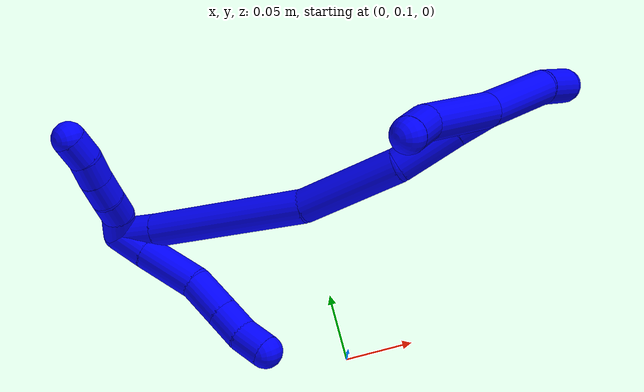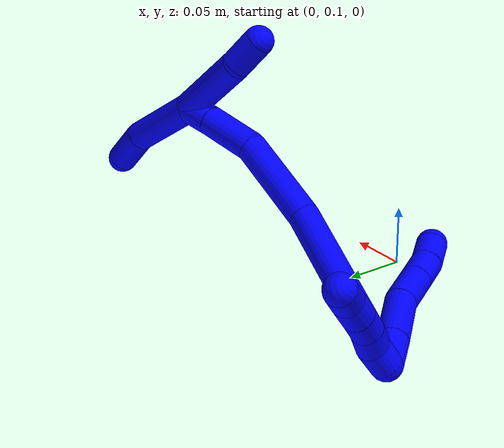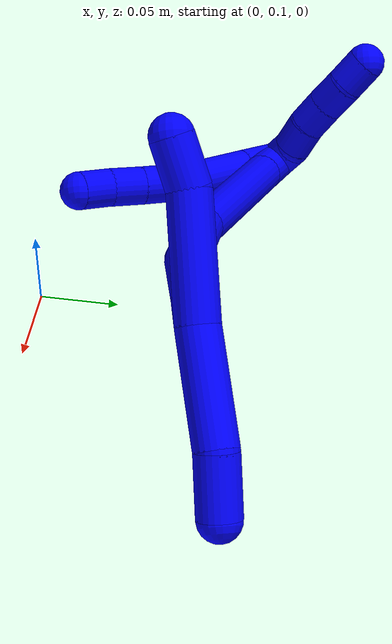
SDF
<sdf version="1.7">
 <world name="default">
  <plugin name="TubeGeneratorPlugin" filename="libtube_generator_plugin.so"/>
  <model name="photoneo_s_sensor">
   <static>1</static>
   <pose>0 0 2 1.57079 1.57079 3.14159</pose>
   <link name="link">
    <inertial><mass>0.1</mass></inertial>
    <sensor name="sensor" type="depth">
     <update_rate>30</update_rate>
     <camera>
      <horizontal_fov>1.22</horizontal_fov>
      <image><width>1920</width><height>1200</height><format>B8G8R8</format></image>
      <clip><near>0.1</near><far>4</far></clip>
      <depth_camera><output>points</output></depth_camera>
     </camera>
     <plugin name="camera_plugin" filename="libgazebo_ros_depth_camera.so">
      <baseline>0.2</baseline>
      <alwaysOn>1</alwaysOn>
      <updateRate>0.0</updateRate>
      <cameraName>camera_ir</cameraName>
      <imageTopicName>/camera/color/image_raw</imageTopicName>
      <cameraInfoTopicName>/camera/color/camera_info</cameraInfoTopicName>
      <depthImageTopicName>/camera/depth/image_raw</depthImageTopicName>
      <depthImageCameraInfoTopicName>/camera/depth/camera_info</depthImageCameraInfoTopicName>
      <pointCloudTopicName>/camera/depth/points</pointCloudTopicName>
      <frameName>fr_optical</frameName>
      <pointCloudCutoff>0.1</pointCloudCutoff>
      <pointCloudCutoffMax>2.0</pointCloudCutoffMax>
      <distortionK1>0</distortionK1>
      <distortionK2>0</distortionK2>
      <distortionK3>0</distortionK3>
      <distortionT1>0</distortionT1>
      <distortionT2>0</distortionT2>
      <CxPrime>0</CxPrime>
      <Cx>0</Cx>
      <Cy>0</Cy>
      <focalLength>0</focalLength>
      <hackBaseline>0</hackBaseline>
     </plugin>
    </sensor>
   </link>
  </model>
  <gravity>0 0 -9.8</gravity>
  <magnetic_field>6e-06 2.3e-05 -4.2e-05</magnetic_field>
  <atmosphere type="adiabatic"/>
  <physics name="default_physics" default="0" type="ode">
   <max_step_size>0.003</max_step_size>
   <real_time_factor>1</real_time_factor>
   <real_time_update_rate>1000</real_time_update_rate>
   <max_contacts>10000</max_contacts>
   <ode>
    <solver>
     <type>quick</type>
     <iters>100</iters>
     <sor>1.3</sor>
     <use_dynamic_moi_rescaling>0</use_dynamic_moi_rescaling>
    </solver>
    <constraints>
     <contact_max_correcting_vel>0</contact_max_correcting_vel>
     <contact_surface_layer>0.001</contact_surface_layer>
     <cfm>0</cfm>
     <erp>0.2</erp>
    </constraints>
   </ode>
  </physics>
  <scene><ambient>0.4 0.4 0.4 1</ambient><background>0.7 0.7 0.7 1</background><shadows>0</shadows></scene>
  <audio><device>default</device></audio>
  <spherical_coordinates>
   <surface_model>EARTH_WGS84</surface_model>
   <latitude_deg>0</latitude_deg>
   <longitude_deg>0</longitude_deg>
   <elevation>0</elevation>
   <heading_deg>0</heading_deg>
  </spherical_coordinates>
  <model name="bin">
   <static>1</static>
   <link name="bottom">
    <collision name="collision-bottom">
     <pose>0 0 -0.01 0 -0 0</pose>
     <geometry><box><size>0.8 0.6 0.02</size></box></geometry>
     <surface>
      <friction><ode><mu>100</mu><mu2>100</mu2></ode></friction>
      <contact><collide_bitmask>65535</collide_bitmask></contact>
     </surface>
    </collision>
   </link>
   <link name="west_wall">
    <collision name="collision-west_wall">
     <pose>-0.41 0 0.1 0 -0 0</pose>
     <geometry><box><size>0.02 0.6 0.2</size></box></geometry>
     <surface>
      <friction><ode><mu>100</mu><mu2>100</mu2></ode></friction>
      <contact><collide_bitmask>65535</collide_bitmask></contact>
     </surface>
    </collision>
   </link>
   <link name="east_wall">
    <collision name="collision-east_wall">
     <pose>0.41 0 0.1 0 -0 0</pose>
     <geometry><box><size>0.02 0.6 0.2</size></box></geometry>
     <surface>
      <friction><ode><mu>100</mu><mu2>100</mu2></ode></friction>
      <contact><collide_bitmask>65535</collide_bitmask></contact>
     </surface>
    </collision>
   </link>
   <link name="south_wall">
    <collision name="collision-south_wall">
     <pose>0 -0.31 0.1 0 -0 0</pose>
     <geometry><box><size>0.8 0.02 0.2</size></box></geometry>
     <surface>
      <friction><ode><mu>100</mu><mu2>100</mu2></ode></friction>
      <contact><collide_bitmask>65535</collide_bitmask></contact>
     </surface>
    </collision>
   </link>
   <link name="north_wall">
    <collision name="collision-north_wall">
     <pose>0 0.31 0.1 0 -0 0</pose>
     <geometry><box><size>0.8 0.02 0.2</size></box></geometry>
     <surface>
      <friction><ode><mu>100</mu><mu2>100</mu2></ode></friction>
      <contact><collide_bitmask>65535</collide_bitmask></contact>
     </surface>
    </collision>
   </link>
  </model>
  <model name="1">
   <static>0</static>
   <link name="1">
    <collision name="collision-cylinder-e_1_2_8">
     <pose>0.008444 0.010275 0.003249 -1.26458 0.664647 -0.495314</pose>
     <geometry><cylinder><radius>0.0125</radius><length>0.027381</length></cylinder></geometry>
     <surface>
      <friction><ode><mu>1.16</mu><mu2>1.16</mu2><slip1>0</slip1><slip2>0</slip2></ode></friction>
      <contact><ode><kp>1e+06</kp><kd>1</kd><max_vel>0</max_vel><min_depth>0.001</min_depth></ode></contact>
     </surface>
    </collision>
    <visual name="visual-cylinder-e_1_2_8">
     <pose>0.008444 0.010275 0.003249 -1.26458 0.664647 -0.495314</pose>
     <geometry><cylinder><radius>0.0125</radius><length>0.027381</length></cylinder></geometry>
     <material><ambient>0 0 1 1</ambient></material>
    </visual>
    <collision name="collision-cylinder-e_2_8_9">
     <pose>0.031564 0.037283 0.012181 -1.24332 0.693035 -0.506281</pose>
     <geometry><cylinder><radius>0.0125</radius><length>0.045943</length></cylinder></geometry>
     <surface>
      <friction><ode><mu>1.16</mu><mu2>1.16</mu2><slip1>0</slip1><slip2>0</slip2></ode></friction>
      <contact><ode><kp>1e+06</kp><kd>1</kd><max_vel>0</max_vel><min_depth>0.001</min_depth></ode></contact>
     </surface>
    </collision>
    <visual name="visual-cylinder-e_2_8_9">
     <pose>0.031564 0.037283 0.012181 -1.24332 0.693035 -0.506281</pose>
     <geometry><cylinder><radius>0.0125</radius><length>0.045943</length></cylinder></geometry>
     <material><ambient>0 0 1 1</ambient></material>
    </visual>
    <collision name="collision-cylinder-e_3_9_10">
     <pose>0.054308 0.067601 0.019056 -1.48336 0.534229 -0.491304</pose>
     <geometry><cylinder><radius>0.0125</radius><length>0.031688</length></cylinder></geometry>
     <surface>
      <friction><ode><mu>1.16</mu><mu2>1.16</mu2><slip1>0</slip1><slip2>0</slip2></ode></friction>
      <contact><ode><kp>1e+06</kp><kd>1</kd><max_vel>0</max_vel><min_depth>0.001</min_depth></ode></contact>
     </surface>
    </collision>
    <visual name="visual-cylinder-e_3_9_10">
     <pose>0.054308 0.067601 0.019056 -1.48336 0.534229 -0.491304</pose>
     <geometry><cylinder><radius>0.0125</radius><length>0.031688</length></cylinder></geometry>
     <material><ambient>0 0 1 1</ambient></material>
    </visual>
    <collision name="collision-cylinder-e_4_10_11">
     <pose>0.068325 0.090864 0.0209 -1.50344 0.55016 -0.515918</pose>
     <geometry><cylinder><radius>0.0125</radius><length>0.02276</length></cylinder></geometry>
     <surface>
      <friction><ode><mu>1.16</mu><mu2>1.16</mu2><slip1>0</slip1><slip2>0</slip2></ode></friction>
      <contact><ode><kp>1e+06</kp><kd>1</kd><max_vel>0</max_vel><min_depth>0.001</min_depth></ode></contact>
     </surface>
    </collision>
    <visual name="visual-cylinder-e_4_10_11">
     <pose>0.068325 0.090864 0.0209 -1.50344 0.55016 -0.515918</pose>
     <geometry><cylinder><radius>0.0125</radius><length>0.02276</length></cylinder></geometry>
     <material><ambient>0 0 1 1</ambient></material>
    </visual>
    <collision name="collision-cylinder-e_5_11_6">
     <pose>0.0817 0.108653 0.023163 -1.37485 0.731677 -0.609447</pose>
     <geometry><cylinder><radius>0.0125</radius><length>0.022228</length></cylinder></geometry>
     <surface>
      <friction><ode><mu>1.16</mu><mu2>1.16</mu2><slip1>0</slip1><slip2>0</slip2></ode></friction>
      <contact><ode><kp>1e+06</kp><kd>1</kd><max_vel>0</max_vel><min_depth>0.001</min_depth></ode></contact>
     </surface>
    </collision>
    <visual name="visual-cylinder-e_5_11_6">
     <pose>0.0817 0.108653 0.023163 -1.37485 0.731677 -0.609447</pose>
     <geometry><cylinder><radius>0.0125</radius><length>0.022228</length></cylinder></geometry>
     <material><ambient>0 0 1 1</ambient></material>
    </visual>
    <collision name="collision-cylinder-e_1_2_12">
     <pose>0.006926 -0.006879 -0.00217 1.87643 0.765115 1.00399</pose>
     <geometry><cylinder><radius>0.0125</radius><length>0.02</length></cylinder></geometry>
     <surface>
      <friction><ode><mu>1.16</mu><mu2>1.16</mu2><slip1>0</slip1><slip2>0</slip2></ode></friction>
      <contact><ode><kp>1e+06</kp><kd>1</kd><max_vel>0</max_vel><min_depth>0.001</min_depth></ode></contact>
     </surface>
    </collision>
    <visual name="visual-cylinder-e_1_2_12">
     <pose>0.006926 -0.006879 -0.00217 1.87643 0.765115 1.00399</pose>
     <geometry><cylinder><radius>0.0125</radius><length>0.02</length></cylinder></geometry>
     <material><ambient>0 0 1 1</ambient></material>
    </visual>
    <collision name="collision-cylinder-e_2_12_13">
     <pose>0.019415 -0.020189 -0.009603 2.25652 0.589844 1.14011</pose>
     <geometry><cylinder><radius>0.0125</radius><length>0.02</length></cylinder></geometry>
     <surface>
      <friction><ode><mu>1.16</mu><mu2>1.16</mu2><slip1>0</slip1><slip2>0</slip2></ode></friction>
      <contact><ode><kp>1e+06</kp><kd>1</kd><max_vel>0</max_vel><min_depth>0.001</min_depth></ode></contact>
     </surface>
    </collision>
    <visual name="visual-cylinder-e_2_12_13">
     <pose>0.019415 -0.020189 -0.009603 2.25652 0.589844 1.14011</pose>
     <geometry><cylinder><radius>0.0125</radius><length>0.02</length></cylinder></geometry>
     <material><ambient>0 0 1 1</ambient></material>
    </visual>
    <collision name="collision-cylinder-e_3_13_14">
     <pose>0.02953 -0.034172 -0.019582 2.12913 0.47273 0.819693</pose>
     <geometry><cylinder><radius>0.0125</radius><length>0.02</length></cylinder></geometry>
     <surface>
      <friction><ode><mu>1.16</mu><mu2>1.16</mu2><slip1>0</slip1><slip2>0</slip2></ode></friction>
      <contact><ode><kp>1e+06</kp><kd>1</kd><max_vel>0</max_vel><min_depth>0.001</min_depth></ode></contact>
     </surface>
    </collision>
    <visual name="visual-cylinder-e_3_13_14">
     <pose>0.02953 -0.034172 -0.019582 2.12913 0.47273 0.819693</pose>
     <geometry><cylinder><radius>0.0125</radius><length>0.02</length></cylinder></geometry>
     <material><ambient>0 0 1 1</ambient></material>
    </visual>
    <collision name="collision-cylinder-e_4_14_15">
     <pose>0.038985 -0.049349 -0.028522 2.07658 0.512277 0.836409</pose>
     <geometry><cylinder><radius>0.0125</radius><length>0.02</length></cylinder></geometry>
     <surface>
      <friction><ode><mu>1.16</mu><mu2>1.16</mu2><slip1>0</slip1><slip2>0</slip2></ode></friction>
      <contact><ode><kp>1e+06</kp><kd>1</kd><max_vel>0</max_vel><min_depth>0.001</min_depth></ode></contact>
     </surface>
    </collision>
    <visual name="visual-cylinder-e_4_14_15">
     <pose>0.038985 -0.049349 -0.028522 2.07658 0.512277 0.836409</pose>
     <geometry><cylinder><radius>0.0125</radius><length>0.02</length></cylinder></geometry>
     <material><ambient>0 0 1 1</ambient></material>
    </visual>
    <collision name="collision-cylinder-e_5_15_5">
     <pose>0.047148 -0.064773 -0.038086 2.17124 0.332181 0.615717</pose>
     <geometry><cylinder><radius>0.0125</radius><length>0.02</length></cylinder></geometry>
     <surface>
      <friction><ode><mu>1.16</mu><mu2>1.16</mu2><slip1>0</slip1><slip2>0</slip2></ode></friction>
      <contact><ode><kp>1e+06</kp><kd>1</kd><max_vel>0</max_vel><min_depth>0.001</min_depth></ode></contact>
     </surface>
    </collision>
    <visual name="visual-cylinder-e_5_15_5">
     <pose>0.047148 -0.064773 -0.038086 2.17124 0.332181 0.615717</pose>
     <geometry><cylinder><radius>0.0125</radius><length>0.02</length></cylinder></geometry>
     <material><ambient>0 0 1 1</ambient></material>
    </visual>
    <collision name="collision-cylinder-e_1_2_16">
     <pose>0.013072 0.003398 0.007114 -0.445622 1.02811 -0.254507</pose>
     <geometry><cylinder><radius>0.0125</radius><length>0.030531</length></cylinder></geometry>
     <surface>
      <friction><ode><mu>1.16</mu><mu2>1.16</mu2><slip1>0</slip1><slip2>0</slip2></ode></friction>
      <contact><ode><kp>1e+06</kp><kd>1</kd><max_vel>0</max_vel><min_depth>0.001</min_depth></ode></contact>
     </surface>
    </collision>
    <visual name="visual-cylinder-e_1_2_16">
     <pose>0.013072 0.003398 0.007114 -0.445622 1.02811 -0.254507</pose>
     <geometry><cylinder><radius>0.0125</radius><length>0.030531</length></cylinder></geometry>
     <material><ambient>0 0 1 1</ambient></material>
    </visual>
    <collision name="collision-cylinder-e_2_16_17">
     <pose>0.079271 0.01794 0.041693 -0.385465 1.0619 -0.228192</pose>
     <geometry><cylinder><radius>0.0125</radius><length>0.121673</length></cylinder></geometry>
     <surface>
      <friction><ode><mu>1.16</mu><mu2>1.16</mu2><slip1>0</slip1><slip2>0</slip2></ode></friction>
      <contact><ode><kp>1e+06</kp><kd>1</kd><max_vel>0</max_vel><min_depth>0.001</min_depth></ode></contact>
     </surface>
    </collision>
    <visual name="visual-cylinder-e_2_16_17">
     <pose>0.079271 0.01794 0.041693 -0.385465 1.0619 -0.228192</pose>
     <geometry><cylinder><radius>0.0125</radius><length>0.121673</length></cylinder></geometry>
     <material><ambient>0 0 1 1</ambient></material>
    </visual>
    <collision name="collision-cylinder-e_3_17_18">
     <pose>0.167231 0.027375 0.086068 0.100753 1.11684 0.062978</pose>
     <geometry><cylinder><radius>0.0125</radius><length>0.077515</length></cylinder></geometry>
     <surface>
      <friction><ode><mu>1.16</mu><mu2>1.16</mu2><slip1>0</slip1><slip2>0</slip2></ode></friction>
      <contact><ode><kp>1e+06</kp><kd>1</kd><max_vel>0</max_vel><min_depth>0.001</min_depth></ode></contact>
     </surface>
    </collision>
    <visual name="visual-cylinder-e_3_17_18">
     <pose>0.167231 0.027375 0.086068 0.100753 1.11684 0.062978</pose>
     <geometry><cylinder><radius>0.0125</radius><length>0.077515</length></cylinder></geometry>
     <material><ambient>0 0 1 1</ambient></material>
    </visual>
    <collision name="collision-cylinder-e_4_18_19">
     <pose>0.218875 0.020946 0.117349 0.317348 0.83813 0.142321</pose>
     <geometry><cylinder><radius>0.0125</radius><length>0.045231</length></cylinder></geometry>
     <surface>
      <friction><ode><mu>1.16</mu><mu2>1.16</mu2><slip1>0</slip1><slip2>0</slip2></ode></friction>
      <contact><ode><kp>1e+06</kp><kd>1</kd><max_vel>0</max_vel><min_depth>0.001</min_depth></ode></contact>
     </surface>
    </collision>
    <visual name="visual-cylinder-e_4_18_19">
     <pose>0.218875 0.020946 0.117349 0.317348 0.83813 0.142321</pose>
     <geometry><cylinder><radius>0.0125</radius><length>0.045231</length></cylinder></geometry>
     <material><ambient>0 0 1 1</ambient></material>
    </visual>
    <collision name="collision-cylinder-e_5_19_1">
     <pose>0.244561 0.014006 0.140277 0.253762 0.787332 0.10587</pose>
     <geometry><cylinder><radius>0.0125</radius><length>0.025052</length></cylinder></geometry>
     <surface>
      <friction><ode><mu>1.16</mu><mu2>1.16</mu2><slip1>0</slip1><slip2>0</slip2></ode></friction>
      <contact><ode><kp>1e+06</kp><kd>1</kd><max_vel>0</max_vel><min_depth>0.001</min_depth></ode></contact>
     </surface>
    </collision>
    <visual name="visual-cylinder-e_5_19_1">
     <pose>0.244561 0.014006 0.140277 0.253762 0.787332 0.10587</pose>
     <geometry><cylinder><radius>0.0125</radius><length>0.025052</length></cylinder></geometry>
     <material><ambient>0 0 1 1</ambient></material>
    </visual>
    <collision name="collision-cylinder-e_1_1_20">
     <pose>0.252819 0.010036 0.181285 0.053898 -0.018964 -0.000511</pose>
     <geometry><cylinder><radius>0.0125</radius><length>0.065009</length></cylinder></geometry>
     <surface>
      <friction><ode><mu>1.16</mu><mu2>1.16</mu2><slip1>0</slip1><slip2>0</slip2></ode></friction>
      <contact><ode><kp>1e+06</kp><kd>1</kd><max_vel>0</max_vel><min_depth>0.001</min_depth></ode></contact>
     </surface>
    </collision>
    <visual name="visual-cylinder-e_1_1_20">
     <pose>0.252819 0.010036 0.181285 0.053898 -0.018964 -0.000511</pose>
     <geometry><cylinder><radius>0.0125</radius><length>0.065009</length></cylinder></geometry>
     <material><ambient>0 0 1 1</ambient></material>
    </visual>
    <collision name="collision-cylinder-e_2_20_4">
     <pose>0.248325 0.009964 0.230714 -0.098558 -0.223456 0.011067</pose>
     <geometry><cylinder><radius>0.0125</radius><length>0.034991</length></cylinder></geometry>
     <surface>
      <friction><ode><mu>1.16</mu><mu2>1.16</mu2><slip1>0</slip1><slip2>0</slip2></ode></friction>
      <contact><ode><kp>1e+06</kp><kd>1</kd><max_vel>0</max_vel><min_depth>0.001</min_depth></ode></contact>
     </surface>
    </collision>
    <visual name="visual-cylinder-e_2_20_4">
     <pose>0.248325 0.009964 0.230714 -0.098558 -0.223456 0.011067</pose>
     <geometry><cylinder><radius>0.0125</radius><length>0.034991</length></cylinder></geometry>
     <material><ambient>0 0 1 1</ambient></material>
    </visual>
    <collision name="collision-cylinder-e_1_1_21">
     <pose>0.25807 0.009827 0.113656 3.08594 0.130801 2.33784</pose>
     <geometry><cylinder><radius>0.0125</radius><length>0.071071</length></cylinder></geometry>
     <surface>
      <friction><ode><mu>1.16</mu><mu2>1.16</mu2><slip1>0</slip1><slip2>0</slip2></ode></friction>
      <contact><ode><kp>1e+06</kp><kd>1</kd><max_vel>0</max_vel><min_depth>0.001</min_depth></ode></contact>
     </surface>
    </collision>
    <visual name="visual-cylinder-e_1_1_21">
     <pose>0.25807 0.009827 0.113656 3.08594 0.130801 2.33784</pose>
     <geometry><cylinder><radius>0.0125</radius><length>0.071071</length></cylinder></geometry>
     <material><ambient>0 0 1 1</ambient></material>
    </visual>
    <collision name="collision-cylinder-e_2_21_3">
     <pose>0.267514 0.010183 0.065035 -2.97102 0.338944 -2.2149</pose>
     <geometry><cylinder><radius>0.0125</radius><length>0.028929</length></cylinder></geometry>
     <surface>
      <friction><ode><mu>1.16</mu><mu2>1.16</mu2><slip1>0</slip1><slip2>0</slip2></ode></friction>
      <contact><ode><kp>1e+06</kp><kd>1</kd><max_vel>0</max_vel><min_depth>0.001</min_depth></ode></contact>
     </surface>
    </collision>
    <visual name="visual-cylinder-e_2_21_3">
     <pose>0.267514 0.010183 0.065035 -2.97102 0.338944 -2.2149</pose>
     <geometry><cylinder><radius>0.0125</radius><length>0.028929</length></cylinder></geometry>
     <material><ambient>0 0 1 1</ambient></material>
    </visual>
    <collision name="collision-sphere-3">
     <pose>0.272323 0.012499 0.051592 0 -0 0</pose>
     <geometry><sphere><radius>0.0125</radius></sphere></geometry>
     <surface>
      <friction><ode><mu>1.16</mu><mu2>1.16</mu2><slip1>0</slip1><slip2>0</slip2></ode></friction>
      <contact><ode><kp>1e+06</kp><kd>1</kd><max_vel>0</max_vel><min_depth>0.001</min_depth></ode></contact>
     </surface>
    </collision>
    <visual name="visual-sphere-3">
     <pose>0.272323 0.012499 0.051592 0 -0 0</pose>
     <geometry><sphere><radius>0.0125</radius></sphere></geometry>
     <material><ambient>0 0 1 1</ambient></material>
    </visual>
    <collision name="collision-sphere-21">
     <pose>0.262705 0.007867 0.078479 0 -0 0</pose>
     <geometry><sphere><radius>0.0125</radius></sphere></geometry>
     <surface>
      <friction><ode><mu>1.16</mu><mu2>1.16</mu2><slip1>0</slip1><slip2>0</slip2></ode></friction>
      <contact><ode><kp>1e+06</kp><kd>1</kd><max_vel>0</max_vel><min_depth>0.001</min_depth></ode></contact>
     </surface>
    </collision>
    <visual name="visual-sphere-21">
     <pose>0.262705 0.007867 0.078479 0 -0 0</pose>
     <geometry><sphere><radius>0.0125</radius></sphere></geometry>
     <material><ambient>0 0 1 1</ambient></material>
    </visual>
    <collision name="collision-sphere-4">
     <pose>0.244448 0.011643 0.247692 0 -0 0</pose>
     <geometry><sphere><radius>0.0125</radius></sphere></geometry>
     <surface>
      <friction><ode><mu>1.16</mu><mu2>1.16</mu2><slip1>0</slip1><slip2>0</slip2></ode></friction>
      <contact><ode><kp>1e+06</kp><kd>1</kd><max_vel>0</max_vel><min_depth>0.001</min_depth></ode></contact>
     </surface>
    </collision>
    <visual name="visual-sphere-4">
     <pose>0.244448 0.011643 0.247692 0 -0 0</pose>
     <geometry><sphere><radius>0.0125</radius></sphere></geometry>
     <material><ambient>0 0 1 1</ambient></material>
    </visual>
    <collision name="collision-sphere-20">
     <pose>0.252202 0.008286 0.213736 0 -0 0</pose>
     <geometry><sphere><radius>0.0125</radius></sphere></geometry>
     <surface>
      <friction><ode><mu>1.16</mu><mu2>1.16</mu2><slip1>0</slip1><slip2>0</slip2></ode></friction>
      <contact><ode><kp>1e+06</kp><kd>1</kd><max_vel>0</max_vel><min_depth>0.001</min_depth></ode></contact>
     </surface>
    </collision>
    <visual name="visual-sphere-20">
     <pose>0.252202 0.008286 0.213736 0 -0 0</pose>
     <geometry><sphere><radius>0.0125</radius></sphere></geometry>
     <material><ambient>0 0 1 1</ambient></material>
    </visual>
    <collision name="collision-sphere-6">
     <pose>0.089125 0.116764 0.024773 0 -0 0</pose>
     <geometry><sphere><radius>0.0125</radius></sphere></geometry>
     <surface>
      <friction><ode><mu>1.16</mu><mu2>1.16</mu2><slip1>0</slip1><slip2>0</slip2></ode></friction>
      <contact><ode><kp>1e+06</kp><kd>1</kd><max_vel>0</max_vel><min_depth>0.001</min_depth></ode></contact>
     </surface>
    </collision>
    <visual name="visual-sphere-6">
     <pose>0.089125 0.116764 0.024773 0 -0 0</pose>
     <geometry><sphere><radius>0.0125</radius></sphere></geometry>
     <material><ambient>0 0 1 1</ambient></material>
    </visual>
    <collision name="collision-sphere-11">
     <pose>0.074274 0.100542 0.021553 0 -0 0</pose>
     <geometry><sphere><radius>0.0125</radius></sphere></geometry>
     <surface>
      <friction><ode><mu>1.16</mu><mu2>1.16</mu2><slip1>0</slip1><slip2>0</slip2></ode></friction>
      <contact><ode><kp>1e+06</kp><kd>1</kd><max_vel>0</max_vel><min_depth>0.001</min_depth></ode></contact>
     </surface>
    </collision>
    <visual name="visual-sphere-11">
     <pose>0.074274 0.100542 0.021553 0 -0 0</pose>
     <geometry><sphere><radius>0.0125</radius></sphere></geometry>
     <material><ambient>0 0 1 1</ambient></material>
    </visual>
    <collision name="collision-sphere-10">
     <pose>0.062375 0.081185 0.020247 0 -0 0</pose>
     <geometry><sphere><radius>0.0125</radius></sphere></geometry>
     <surface>
      <friction><ode><mu>1.16</mu><mu2>1.16</mu2><slip1>0</slip1><slip2>0</slip2></ode></friction>
      <contact><ode><kp>1e+06</kp><kd>1</kd><max_vel>0</max_vel><min_depth>0.001</min_depth></ode></contact>
     </surface>
    </collision>
    <visual name="visual-sphere-10">
     <pose>0.062375 0.081185 0.020247 0 -0 0</pose>
     <geometry><sphere><radius>0.0125</radius></sphere></geometry>
     <material><ambient>0 0 1 1</ambient></material>
    </visual>
    <collision name="collision-sphere-9">
     <pose>0.04624 0.054016 0.017866 0 -0 0</pose>
     <geometry><sphere><radius>0.0125</radius></sphere></geometry>
     <surface>
      <friction><ode><mu>1.16</mu><mu2>1.16</mu2><slip1>0</slip1><slip2>0</slip2></ode></friction>
      <contact><ode><kp>1e+06</kp><kd>1</kd><max_vel>0</max_vel><min_depth>0.001</min_depth></ode></contact>
     </surface>
    </collision>
    <visual name="visual-sphere-9">
     <pose>0.04624 0.054016 0.017866 0 -0 0</pose>
     <geometry><sphere><radius>0.0125</radius></sphere></geometry>
     <material><ambient>0 0 1 1</ambient></material>
    </visual>
    <collision name="collision-sphere-2">
     <geometry><sphere><radius>0.0125</radius></sphere></geometry>
     <surface>
      <friction><ode><mu>1.16</mu><mu2>1.16</mu2><slip1>0</slip1><slip2>0</slip2></ode></friction>
      <contact><ode><kp>1e+06</kp><kd>1</kd><max_vel>0</max_vel><min_depth>0.001</min_depth></ode></contact>
     </surface>
    </collision>
    <visual name="visual-sphere-2">
     <geometry><sphere><radius>0.0125</radius></sphere></geometry>
     <material><ambient>0 0 1 1</ambient></material>
    </visual>
    <collision name="collision-sphere-19">
     <pose>0.235687 0.016226 0.13172 0 -0 0</pose>
     <geometry><sphere><radius>0.0125</radius></sphere></geometry>
     <surface>
      <friction><ode><mu>1.16</mu><mu2>1.16</mu2><slip1>0</slip1><slip2>0</slip2></ode></friction>
      <contact><ode><kp>1e+06</kp><kd>1</kd><max_vel>0</max_vel><min_depth>0.001</min_depth></ode></contact>
     </surface>
    </collision>
    <visual name="visual-sphere-19">
     <pose>0.235687 0.016226 0.13172 0 -0 0</pose>
     <geometry><sphere><radius>0.0125</radius></sphere></geometry>
     <material><ambient>0 0 1 1</ambient></material>
    </visual>
    <collision name="collision-sphere-8">
     <pose>0.016888 0.02055 0.006497 0 -0 0</pose>
     <geometry><sphere><radius>0.0125</radius></sphere></geometry>
     <surface>
      <friction><ode><mu>1.16</mu><mu2>1.16</mu2><slip1>0</slip1><slip2>0</slip2></ode></friction>
      <contact><ode><kp>1e+06</kp><kd>1</kd><max_vel>0</max_vel><min_depth>0.001</min_depth></ode></contact>
     </surface>
    </collision>
    <visual name="visual-sphere-8">
     <pose>0.016888 0.02055 0.006497 0 -0 0</pose>
     <geometry><sphere><radius>0.0125</radius></sphere></geometry>
     <material><ambient>0 0 1 1</ambient></material>
    </visual>
    <collision name="collision-sphere-12">
     <pose>0.013852 -0.013758 -0.004341 0 -0 0</pose>
     <geometry><sphere><radius>0.0125</radius></sphere></geometry>
     <surface>
      <friction><ode><mu>1.16</mu><mu2>1.16</mu2><slip1>0</slip1><slip2>0</slip2></ode></friction>
      <contact><ode><kp>1e+06</kp><kd>1</kd><max_vel>0</max_vel><min_depth>0.001</min_depth></ode></contact>
     </surface>
    </collision>
    <visual name="visual-sphere-12">
     <pose>0.013852 -0.013758 -0.004341 0 -0 0</pose>
     <geometry><sphere><radius>0.0125</radius></sphere></geometry>
     <material><ambient>0 0 1 1</ambient></material>
    </visual>
    <collision name="collision-sphere-13">
     <pose>0.024977 -0.026621 -0.014865 0 -0 0</pose>
     <geometry><sphere><radius>0.0125</radius></sphere></geometry>
     <surface>
      <friction><ode><mu>1.16</mu><mu2>1.16</mu2><slip1>0</slip1><slip2>0</slip2></ode></friction>
      <contact><ode><kp>1e+06</kp><kd>1</kd><max_vel>0</max_vel><min_depth>0.001</min_depth></ode></contact>
     </surface>
    </collision>
    <visual name="visual-sphere-13">
     <pose>0.024977 -0.026621 -0.014865 0 -0 0</pose>
     <geometry><sphere><radius>0.0125</radius></sphere></geometry>
     <material><ambient>0 0 1 1</ambient></material>
    </visual>
    <collision name="collision-sphere-14">
     <pose>0.034083 -0.041724 -0.024299 0 -0 0</pose>
     <geometry><sphere><radius>0.0125</radius></sphere></geometry>
     <surface>
      <friction><ode><mu>1.16</mu><mu2>1.16</mu2><slip1>0</slip1><slip2>0</slip2></ode></friction>
      <contact><ode><kp>1e+06</kp><kd>1</kd><max_vel>0</max_vel><min_depth>0.001</min_depth></ode></contact>
     </surface>
    </collision>
    <visual name="visual-sphere-14">
     <pose>0.034083 -0.041724 -0.024299 0 -0 0</pose>
     <geometry><sphere><radius>0.0125</radius></sphere></geometry>
     <material><ambient>0 0 1 1</ambient></material>
    </visual>
    <collision name="collision-sphere-15">
     <pose>0.043887 -0.056974 -0.032745 0 -0 0</pose>
     <geometry><sphere><radius>0.0125</radius></sphere></geometry>
     <surface>
      <friction><ode><mu>1.16</mu><mu2>1.16</mu2><slip1>0</slip1><slip2>0</slip2></ode></friction>
      <contact><ode><kp>1e+06</kp><kd>1</kd><max_vel>0</max_vel><min_depth>0.001</min_depth></ode></contact>
     </surface>
    </collision>
    <visual name="visual-sphere-15">
     <pose>0.043887 -0.056974 -0.032745 0 -0 0</pose>
     <geometry><sphere><radius>0.0125</radius></sphere></geometry>
     <material><ambient>0 0 1 1</ambient></material>
    </visual>
    <collision name="collision-sphere-5">
     <pose>0.050409 -0.072573 -0.043427 0 -0 0</pose>
     <geometry><sphere><radius>0.0125</radius></sphere></geometry>
     <surface>
      <friction><ode><mu>1.16</mu><mu2>1.16</mu2><slip1>0</slip1><slip2>0</slip2></ode></friction>
      <contact><ode><kp>1e+06</kp><kd>1</kd><max_vel>0</max_vel><min_depth>0.001</min_depth></ode></contact>
     </surface>
    </collision>
    <visual name="visual-sphere-5">
     <pose>0.050409 -0.072573 -0.043427 0 -0 0</pose>
     <geometry><sphere><radius>0.0125</radius></sphere></geometry>
     <material><ambient>0 0 1 1</ambient></material>
    </visual>
    <collision name="collision-sphere-16">
     <pose>0.026144 0.006796 0.014227 0 -0 0</pose>
     <geometry><sphere><radius>0.0125</radius></sphere></geometry>
     <surface>
      <friction><ode><mu>1.16</mu><mu2>1.16</mu2><slip1>0</slip1><slip2>0</slip2></ode></friction>
      <contact><ode><kp>1e+06</kp><kd>1</kd><max_vel>0</max_vel><min_depth>0.001</min_depth></ode></contact>
     </surface>
    </collision>
    <visual name="visual-sphere-16">
     <pose>0.026144 0.006796 0.014227 0 -0 0</pose>
     <geometry><sphere><radius>0.0125</radius></sphere></geometry>
     <material><ambient>0 0 1 1</ambient></material>
    </visual>
    <collision name="collision-sphere-17">
     <pose>0.132399 0.029085 0.069158 0 -0 0</pose>
     <geometry><sphere><radius>0.0125</radius></sphere></geometry>
     <surface>
      <friction><ode><mu>1.16</mu><mu2>1.16</mu2><slip1>0</slip1><slip2>0</slip2></ode></friction>
      <contact><ode><kp>1e+06</kp><kd>1</kd><max_vel>0</max_vel><min_depth>0.001</min_depth></ode></contact>
     </surface>
    </collision>
    <visual name="visual-sphere-17">
     <pose>0.132399 0.029085 0.069158 0 -0 0</pose>
     <geometry><sphere><radius>0.0125</radius></sphere></geometry>
     <material><ambient>0 0 1 1</ambient></material>
    </visual>
    <collision name="collision-sphere-18">
     <pose>0.202063 0.025666 0.102978 0 -0 0</pose>
     <geometry><sphere><radius>0.0125</radius></sphere></geometry>
     <surface>
      <friction><ode><mu>1.16</mu><mu2>1.16</mu2><slip1>0</slip1><slip2>0</slip2></ode></friction>
      <contact><ode><kp>1e+06</kp><kd>1</kd><max_vel>0</max_vel><min_depth>0.001</min_depth></ode></contact>
     </surface>
    </collision>
    <visual name="visual-sphere-18">
     <pose>0.202063 0.025666 0.102978 0 -0 0</pose>
     <geometry><sphere><radius>0.0125</radius></sphere></geometry>
     <material><ambient>0 0 1 1</ambient></material>
    </visual>
    <collision name="collision-sphere-1">
     <pose>0.253435 0.011787 0.148834 0 -0 0</pose>
     <geometry><sphere><radius>0.0125</radius></sphere></geometry>
     <surface>
      <friction><ode><mu>1.16</mu><mu2>1.16</mu2><slip1>0</slip1><slip2>0</slip2></ode></friction>
      <contact><ode><kp>1e+06</kp><kd>1</kd><max_vel>0</max_vel><min_depth>0.001</min_depth></ode></contact>
     </surface>
    </collision>
    <visual name="visual-sphere-1">
     <pose>0.253435 0.011787 0.148834 0 -0 0</pose>
     <geometry><sphere><radius>0.0125</radius></sphere></geometry>
     <material><ambient>0 0 1 1</ambient></material>
    </visual>
    <inertial>
     <pose>0.133136 0.017084 0.067846 0 -0 0</pose>
     <mass>0.75</mass>
     <inertia>
      <ixx>0.000159</ixx>
      <ixy>0</ixy>
      <ixz>0</ixz>
      <iyy>0.00028</iyy>
      <iyz>0</iyz>
      <izz>-0.000227</izz>
     </inertia>
    </inertial>
   </link>
   <pose>-0.141585 0.233342 0.011495 -2.75427 -0.922187 -0.206447</pose>
  </model>
 </world>
</sdf>
